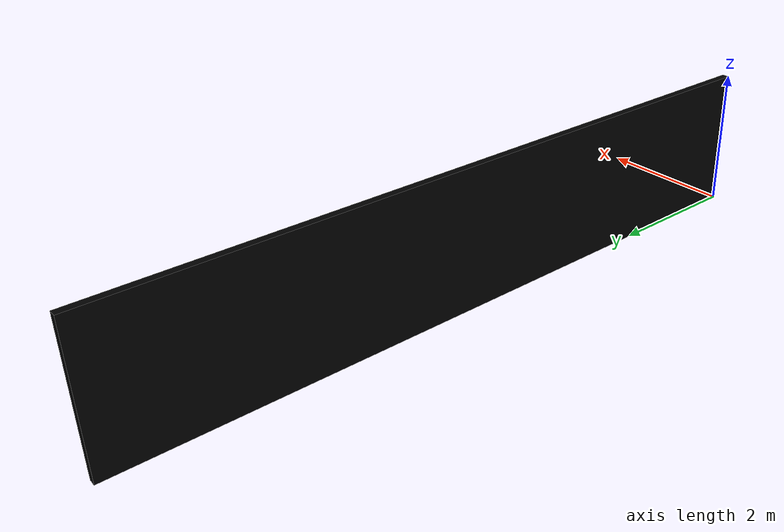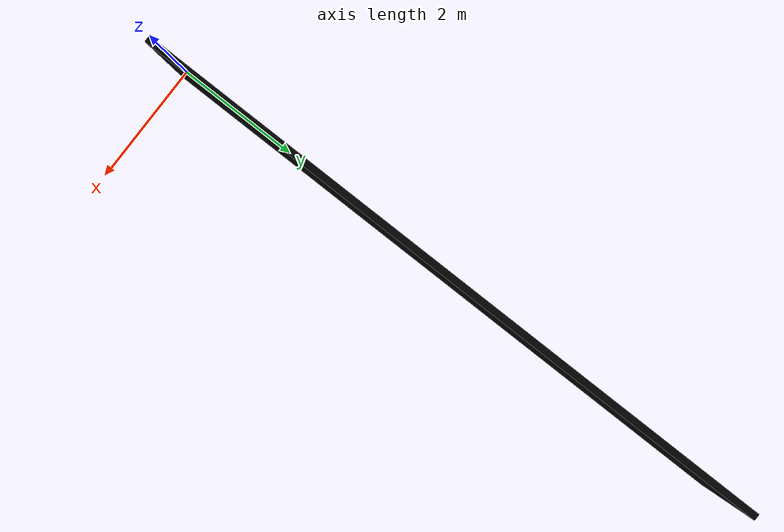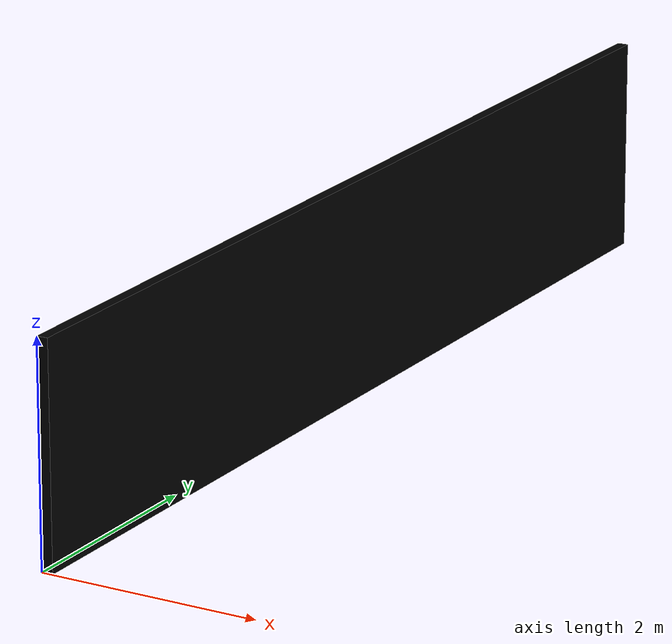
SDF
<?xml version='1.0'?>
<sdf version="1.4">
<model name="wall">
  <link name="link">
    <pose>0.05 5.0 1.0 0 0 0</pose>
      <inertial>
        <mass>1.0</mass>
        <inertia>
          <ixx>0.083</ixx>
          <ixy>0.0</ixy>
          <ixz>0.0</ixz>
          <iyy>0.083</iyy>
          <iyz>0.0</iyz>
          <izz>0.083</izz>
        </inertia>
      </inertial>
      <collision name="collision">
        <geometry>
          <box>
            <size>0.10 10.0 2.0</size>
          </box>
        </geometry>
      </collision>
      <visual name="visual">
	<material>
            <ambient>0.0 0.0 0.0 1</ambient>
            <diffuse>0.0 0.0 0.0 1</diffuse>
            <specular>0 0 0 1</specular>
            <emissive>0.0 0.0 0.0 1</emissive>
        </material>
        <geometry>
          <box>
            <size>0.10 10.0 2.0</size>
          </box>
        </geometry>
      </visual>
    </link>
  </model>
</sdf>
